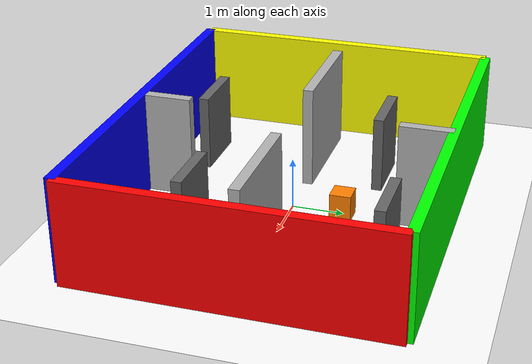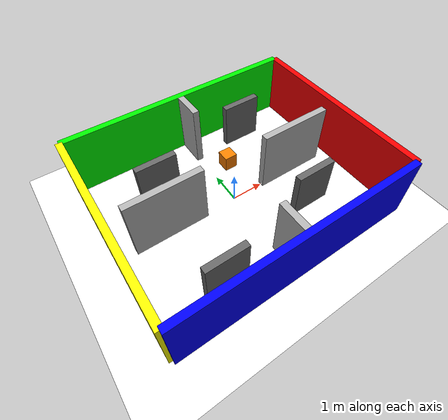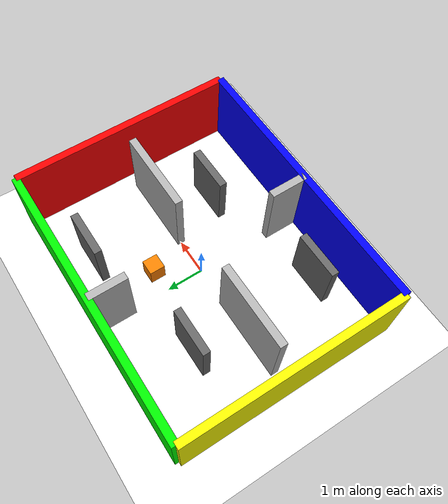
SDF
<sdf version="1.7">
 <world name="warehouse_world">
  <plugin name="gazebo_rosphysics" filename="libgazebo_rosphysics.so"/>
  <plugin name="gazebo_ros_api_plugin" filename="libgazebo_ros_api_plugin.so"/>
  <plugin name="gazebo_ros_model_pose_plugin" filename="libgazebo_ros_model_pose_plugin.so"/>
  <sun>
   <pose>0 0 10 0 0 0</pose>
   <diffuse>1 1 1 1</diffuse>
   <specular>1 1 1 1</specular>
   <attenuation>
    <range>1000</range>
    <constant>0.8</constant>
    <linear>0.01</linear>
    <quadratic>0.001</quadratic>
   </attenuation>
   <direction>-0.5 0.5 -1</direction>
  </sun>
  <model name="white_floor">
   <static>true</static>
   <link name="floor_link">
    <collision name="collision">
     <geometry><plane><normal>0 0 1</normal><size>10 10</size></plane></geometry>
    </collision>
    <visual name="visual">
     <geometry><plane><normal>0 0 1</normal><size>10 10</size></plane></geometry>
     <material><ambient>1 1 1 1</ambient><diffuse>1 1 1 1</diffuse><specular>0.1 0.1 0.1 1</specular></material>
    </visual>
   </link>
  </model>
  <model name="wall_north">
   <static>true</static>
   <pose>0 3 1 0 0 0</pose>
   <link name="link">
    <collision name="collision"><geometry><box><size>7.5 0.2 2</size></box></geometry></collision>
    <visual name="visual">
     <geometry><box><size>7.5 0.2 2</size></box></geometry>
     <material><ambient>0 1 0 1</ambient><diffuse>0 1 0 1</diffuse></material>
    </visual>
   </link>
  </model>
  <model name="wall_south">
   <static>true</static>
   <pose>0 -3 1 0 0 0</pose>
   <link name="link">
    <collision name="collision"><geometry><box><size>7.5 0.2 2</size></box></geometry></collision>
    <visual name="visual">
     <geometry><box><size>7.5 0.2 2</size></box></geometry>
     <material><ambient>0 0 1 1</ambient><diffuse>0 0 1 1</diffuse></material>
    </visual>
   </link>
  </model>
  <model name="wall_east">
   <static>true</static>
   <pose>3.75 0 1 0 0 0</pose>
   <link name="link">
    <collision name="collision"><geometry><box><size>0.2 6 2</size></box></geometry></collision>
    <visual name="visual">
     <geometry><box><size>0.2 6 2</size></box></geometry>
     <material><ambient>1 0 0 1</ambient><diffuse>1 0 0 1</diffuse></material>
    </visual>
   </link>
  </model>
  <model name="wall_west">
   <static>true</static>
   <pose>-3.75 0 1 0 0 0</pose>
   <link name="link">
    <collision name="collision"><geometry><box><size>0.2 6 2</size></box></geometry></collision>
    <visual name="visual">
     <geometry><box><size>0.2 6 2</size></box></geometry>
     <material><ambient>1 1 0 1</ambient><diffuse>1 1 0 1</diffuse></material>
    </visual>
   </link>
  </model>
  <model name="mid_wall_left">
   <static>true</static>
   <pose>-2.125 0 1 0 0 0</pose>
   <link name="link">
    <collision name="collision"><geometry><box><size>2.25 0.2 2</size></box></geometry></collision>
    <visual name="visual">
     <geometry><box><size>2.25 0.2 2</size></box></geometry>
     <material><ambient>0.7 0.7 0.7 1</ambient><diffuse>0.7 0.7 0.7 1</diffuse></material>
    </visual>
   </link>
  </model>
  <model name="mid_wall_right">
   <static>true</static>
   <pose>2.125 0 1 0 0 0</pose>
   <link name="link">
    <collision name="collision"><geometry><box><size>2.25 0.2 2</size></box></geometry></collision>
    <visual name="visual">
     <geometry><box><size>2.25 0.2 2</size></box></geometry>
     <material><ambient>0.7 0.7 0.7 1</ambient><diffuse>0.7 0.7 0.7 1</diffuse></material>
    </visual>
   </link>
  </model>
  <model name="mid_vertical_top">
   <static>true</static>
   <pose>0 2.5 1 0 0 0</pose>
   <link name="link">
    <collision name="collision"><geometry><box><size>0.2 1 2</size></box></geometry></collision>
    <visual name="visual">
     <geometry><box><size>0.2 1 2</size></box></geometry>
     <material><ambient>0.7 0.7 0.7 1</ambient><diffuse>0.7 0.7 0.7 1</diffuse></material>
    </visual>
   </link>
  </model>
  <model name="mid_vertical_bottom">
   <static>true</static>
   <pose>0 -2.5 1 0 0 0</pose>
   <link name="link">
    <collision name="collision"><geometry><box><size>0.2 1 2</size></box></geometry></collision>
    <visual name="visual">
     <geometry><box><size>0.2 1 2</size></box></geometry>
     <material><ambient>0.7 0.7 0.7 1</ambient><diffuse>0.7 0.7 0.7 1</diffuse></material>
    </visual>
   </link>
  </model>
  <model name="blocker_tl">
   <static>true</static>
   <pose>-1.75 1.375 0.75 0 0 0</pose>
   <link name="link">
    <collision name="collision"><geometry><box><size>1.25 0.2 1.5</size></box></geometry></collision>
    <visual name="visual">
     <geometry><box><size>1.25 0.2 1.5</size></box></geometry>
     <material><ambient>0.4 0.4 0.4 1</ambient><diffuse>0.4 0.4 0.4 1</diffuse></material>
    </visual>
   </link>
  </model>
  <model name="blocker_tr">
   <static>true</static>
   <pose>1.75 2.2 0.75 0 0 0</pose>
   <link name="link">
    <collision name="collision"><geometry><box><size>1.25 0.2 1.5</size></box></geometry></collision>
    <visual name="visual">
     <geometry><box><size>1.25 0.2 1.5</size></box></geometry>
     <material><ambient>0.4 0.4 0.4 1</ambient><diffuse>0.4 0.4 0.4 1</diffuse></material>
    </visual>
   </link>
  </model>
  <model name="blocker_bl">
   <static>true</static>
   <pose>-1.75 -2.2 0.75 0 0 0</pose>
   <link name="link">
    <collision name="collision"><geometry><box><size>1.25 0.2 1.5</size></box></geometry></collision>
    <visual name="visual">
     <geometry><box><size>1.25 0.2 1.5</size></box></geometry>
     <material><ambient>0.4 0.4 0.4 1</ambient><diffuse>0.4 0.4 0.4 1</diffuse></material>
    </visual>
   </link>
  </model>
  <model name="moving_box_obstacle">
   <static>false</static>
   <kinematic>true</kinematic>
   <pose>0.5 1.1 0.5 0 0 0</pose>
   <link name="body_link">
    <collision name="collision"><geometry><box><size>0.4 0.4 0.5</size></box></geometry></collision>
    <visual name="visual">
     <geometry><box><size>0.4 0.4 0.5</size></box></geometry>
     <material><ambient>1 0.5 0 1</ambient><diffuse>1 0.5 0 1</diffuse></material>
    </visual>
   </link>
  </model>
  <model name="blocker_br">
   <static>true</static>
   <pose>1.75 -1.375 0.75 0 0 0</pose>
   <link name="link">
    <collision name="collision"><geometry><box><size>1.25 0.2 1.5</size></box></geometry></collision>
    <visual name="visual">
     <geometry><box><size>1.25 0.2 1.5</size></box></geometry>
     <material><ambient>0.4 0.4 0.4 1</ambient><diffuse>0.4 0.4 0.4 1</diffuse></material>
    </visual>
   </link>
  </model>
 </world>
</sdf>
